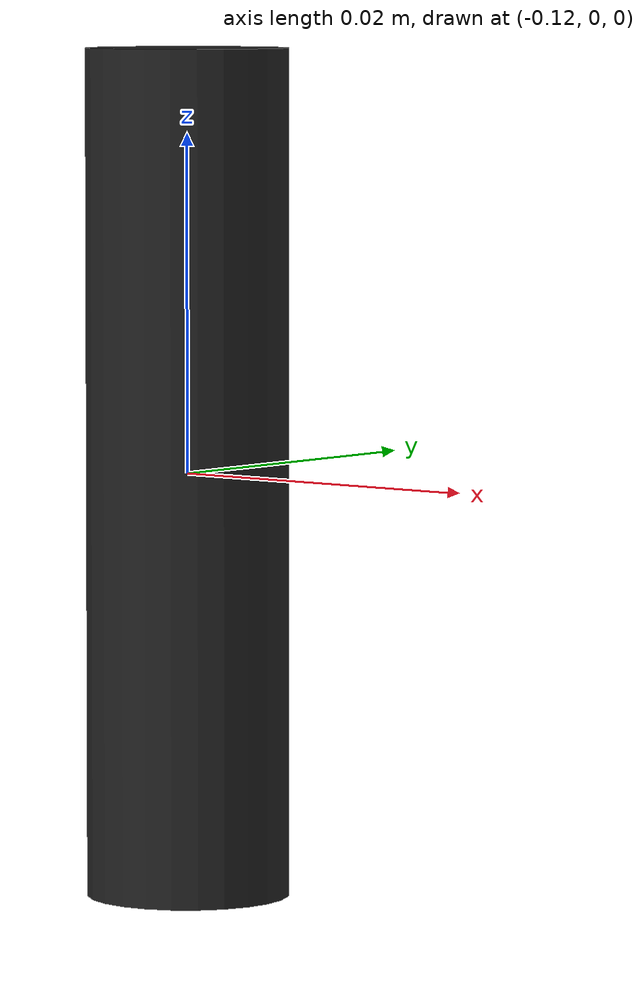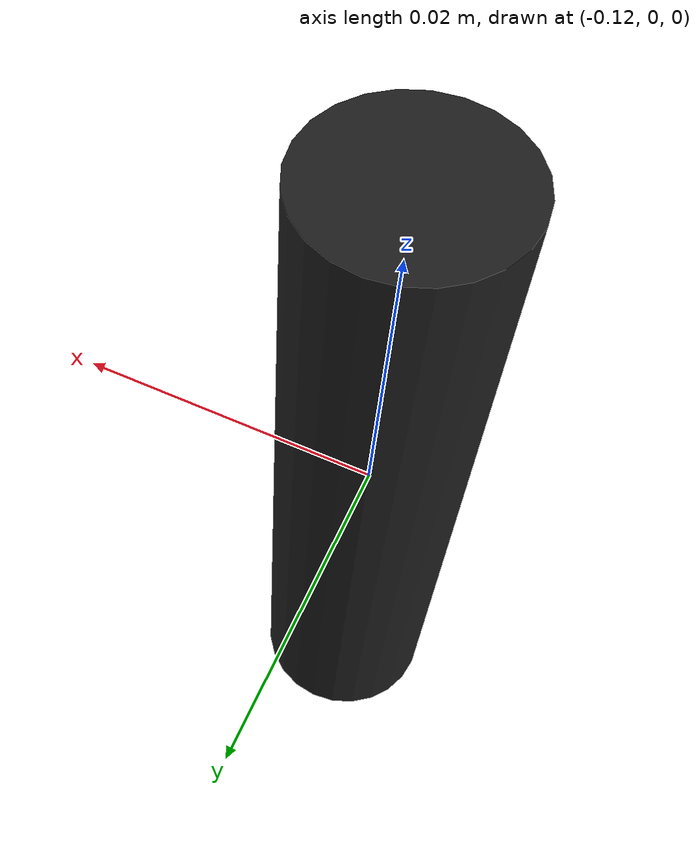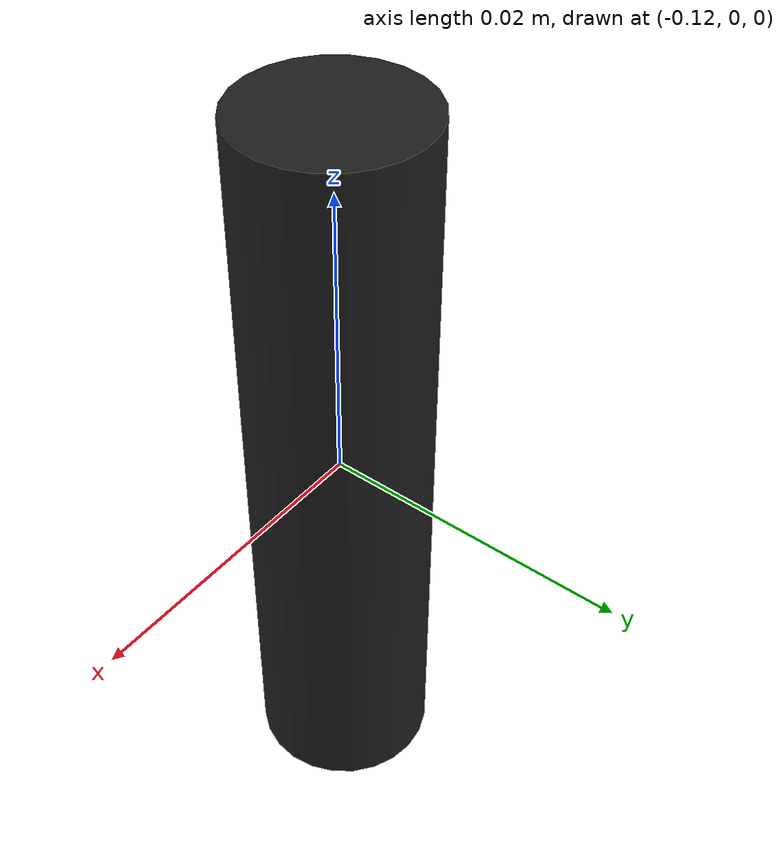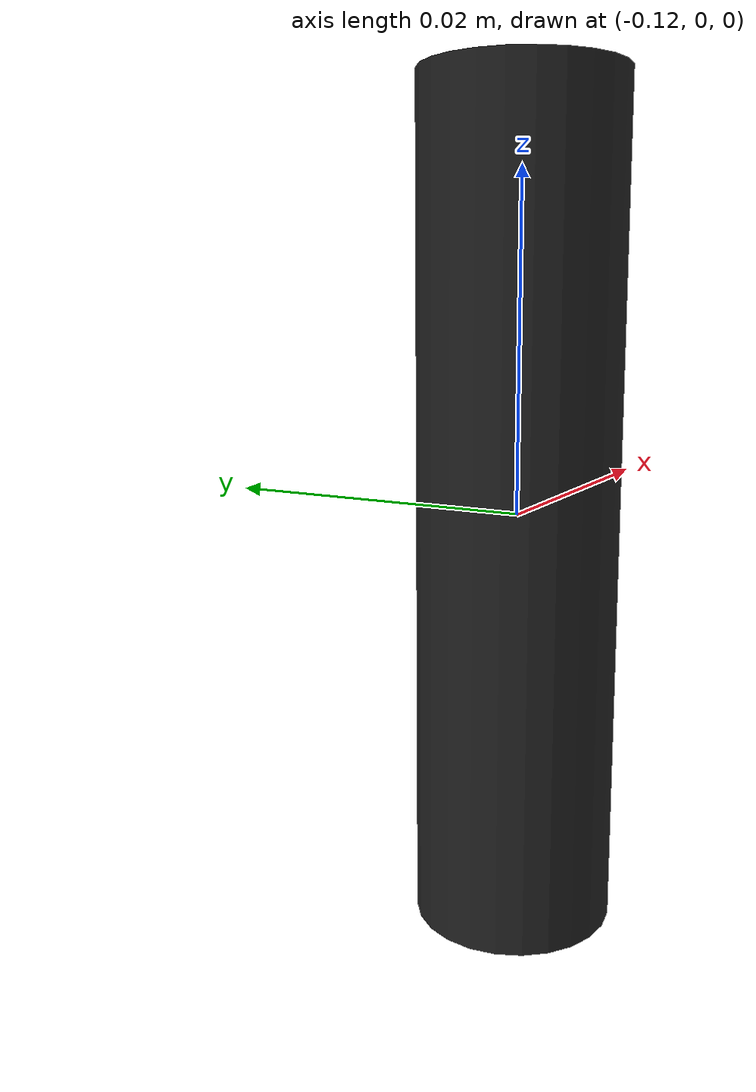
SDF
<?xml version="1.0" ?>
<sdf version="1.4">
    <model name="lidar">
        <pose>-0.12 0.0 0.0 0.0 0.0 0.0 </pose>
        <link name="link">
            <inertial>
                <pose>0 0 0 0 0 0</pose>
                <mass>0.01</mass>
                <inertia>
                    <ixx>2.1733e-6</ixx>
                    <ixy>0</ixy>
                    <ixz>0</ixz>
                    <iyy>2.1733e-6</iyy>
                    <iyz>0</iyz>
                    <izz>1.8e-7</izz>
                </inertia>
            </inertial>
            <visual name="visual">
                <geometry>
                    <cylinder>
                        <radius>0.006</radius>
                        <length>0.05</length>
                    </cylinder>
                </geometry>
                <material>
                    <script>
                        <name>Gazebo/Black</name>
                    </script>
                </material>
            </visual>
            <sensor name="laser" type="ray">
                <pose>0 0 0 0 1.57079633 0</pose>
                <ray>
                    <scan>
                        <horizontal>
                            <samples>20</samples>
                            <resolution>1</resolution>
                            <min_angle>-0.0001</min_angle>
                            <max_angle>0</max_angle>
                        </horizontal>
                    </scan>
                    <range>
                        <min>0.06</min>
                        <!-- do not change: use min_distance (below) for realistic behavior (smaller values cause issues) -->
                        <max>35</max>
                        <!-- do not change: use min_distance (below) for realistic behavior (bigger values cause issues) -->
                        <resolution>0.01</resolution>
                    </range>
                    <noise>
                        <type>gaussian</type>
                        <mean>0.0</mean>
                        <stddev>0.02</stddev>
                    </noise>
                </ray>
                <plugin name="LaserPlugin" filename="libgazebo_lidar_plugin.so">
                    <robotNamespace/>
                    <min_distance>0.2</min_distance>
                    <max_distance>15.0</max_distance>
                </plugin>
                <always_on>1</always_on>
                <update_rate>30</update_rate>
                <visualize>true</visualize>
            </sensor>
        </link>
    </model>
</sdf>
